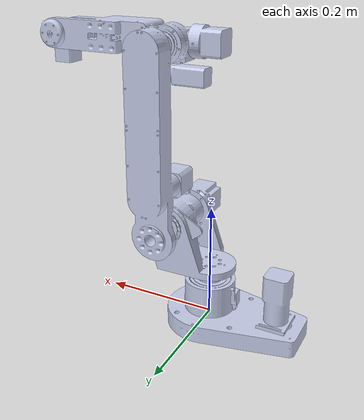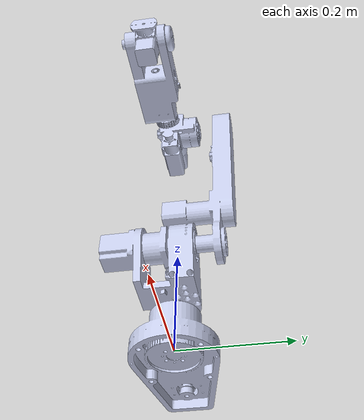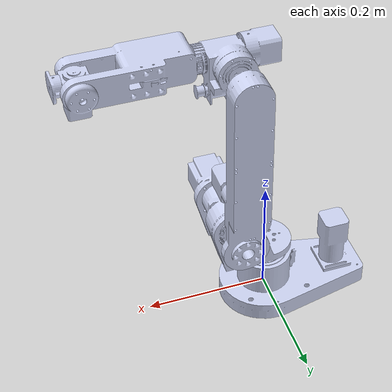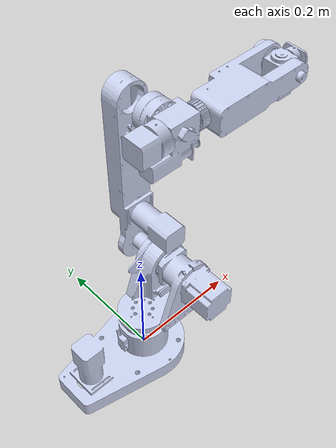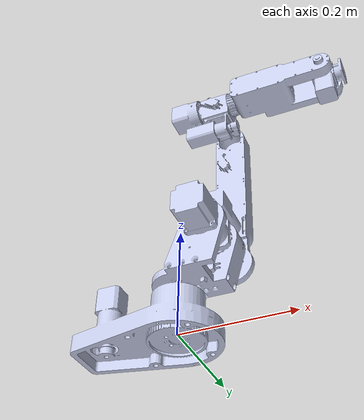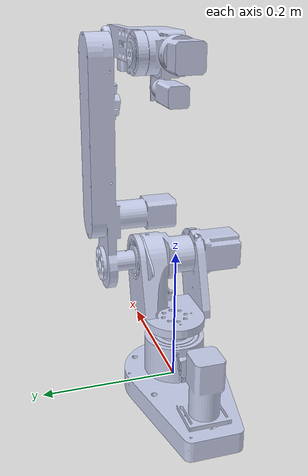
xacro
<?xml version="1.0"?>
<robot name="my_robot" xmlns:xacro="http://www.ros.org/wiki/xacro">

  <material name="grey">
    <color rgba="0.79216 0.81961 0.93333 1" />
  </material>

  <link name="base_link">
    <inertial>
      <origin xyz="-0.041771 -1.1102E-16 0.033857" rpy="0 0 0" />
      <mass value="1.407" />
      <inertia ixx="0.0024719" ixy="-1.3675E-18" ixz="0.00018646"
               iyy="0.00681"   iyz="1.095E-19"
               izz="0.0070135" />
    </inertial>
    <visual>
      <origin xyz="0 0 0" rpy="0 0 0" />
      <geometry>
        <mesh filename="package://my_robot_description/meshes/visual/base_link.STL" />
      </geometry>
      <material name="grey" />
    </visual>
    <collision>
      <origin xyz="0 0 0" rpy="0 0 0" />
      <geometry>
        <mesh filename="package://my_robot_description/meshes/collision/base_link.STL" />
      </geometry>
    </collision>
  </link>

  <link name="1st_Link">
    <inertial>
      <origin xyz="0.0543 -0.020673 0.046417" rpy="0 0 0" />
      <mass value="1.1495" />
      <inertia ixx="0.0032387" ixy="0.00017789" ixz="-0.00039788"
               iyy="0.0020161" iyz="0.00039611"
               izz="0.0027855" />
    </inertial>
    <visual>
      <origin xyz="0 0 0" rpy="0 0 0" />
      <geometry>
        <mesh filename="package://my_robot_description/meshes/visual/1st_Link.STL" />
      </geometry>
      <material name="grey" />
    </visual>
    <collision>
      <origin xyz="0 0 0" rpy="0 0 0" />
      <geometry>
        <mesh filename="package://my_robot_description/meshes/collision/1st_Link.STL" />
      </geometry>
    </collision>
  </link>

  <joint name="Joint_0" type="revolute">
    <origin xyz="0 0 0.0994" rpy="0 0 0" />
    <parent link="base_link" />
    <child link="1st_Link" />
    <axis xyz="0 0 -1" />
    <limit lower="-2.9671" upper="2.9671" effort="4" velocity="3.1" />
  </joint>

  <link name="2nd_Link">
    <inertial>
      <origin xyz="-1.5543E-15 -0.14784 -0.014918" rpy="0 0 0" />
      <mass value="0.8363" />
      <inertia ixx="0.008149"   ixy="9.6713E-18" ixz="-1.613E-18"
               iyy="0.00093169" iyz="0.00089805"
               izz="0.0076645" />
    </inertial>
    <visual>
      <origin xyz="0 0 0" rpy="0 0 0" />
      <geometry>
        <mesh filename="package://my_robot_description/meshes/visual/2nd_Link.STL" />
      </geometry>
      <material name="grey" />
    </visual>
    <collision>
      <origin xyz="0 0 0" rpy="0 0 0" />
      <geometry>
        <mesh filename="package://my_robot_description/meshes/collision/2nd_Link.STL" />
      </geometry>
    </collision>
  </link>

  <joint name="Joint_1" type="revolute">
    <origin xyz="0.064201 0.064413 0.069869" rpy="-1.5708 0 0" />
    <parent link="1st_Link" />
    <child link="2nd_Link" />
    <axis xyz="0 0 -1" />
    <limit lower="-0.733" upper="1.5708" effort="57" velocity="0.63" />
  </joint>

  <link name="3rd_Link">
    <inertial>
      <origin xyz="0.0020169 0.017836 -0.07504" rpy="0 0 0" />
      <mass value="0.27635" />
      <inertia ixx="0.00030182" ixy="3.1988E-05" ixz="-5.1391E-06"
               iyy="0.00023538" iyz="6.3261E-05"
               izz="0.00031122" />
    </inertial>
    <visual>
      <origin xyz="0 0 0" rpy="0 0 0" />
      <geometry>
        <mesh filename="package://my_robot_description/meshes/visual/3rd_Link.STL" />
      </geometry>
      <material name="grey" />
    </visual>
    <collision>
      <origin xyz="0 0 0" rpy="0 0 0" />
      <geometry>
        <mesh filename="package://my_robot_description/meshes/collision/3rd_Link.STL" />
      </geometry>
    </collision>
  </link>

  <joint name="Joint_2" type="revolute">
    <origin xyz="0 -0.305 0.016225" rpy="0 0 0" />
    <parent link="2nd_Link" />
    <child link="3rd_Link" />
    <axis xyz="0 0 1" />
    <limit lower="-1.5533" upper="0.9076" effort="20" velocity="0.63" />
  </joint>

  <link name="4th_Link">
    <inertial>
      <origin xyz="1.2523E-13 0.0044165 0.16589" rpy="0 0 0" />
      <mass value="0.58728" />
      <inertia ixx="0.0038961" ixy="6.9388E-13" ixz="-3.8354E-15"
               iyy="0.0037675" iyz="-5.2921E-05"
               izz="0.00034965" />
    </inertial>
    <visual>
      <origin xyz="0 0 0" rpy="0 0 0" />
      <geometry>
        <mesh filename="package://my_robot_description/meshes/visual/4th_Link.STL" />
      </geometry>
      <material name="grey" />
    </visual>
    <collision>
      <origin xyz="0 0 0" rpy="0 0 0" />
      <geometry>
        <mesh filename="package://my_robot_description/meshes/collision/4th_Link.STL" />
      </geometry>
    </collision>
  </link>

  <joint name="Joint_3" type="revolute">
    <origin xyz="-0.078271 0 -0.090625" rpy="-1.5708 0 -1.5708" />
    <parent link="3rd_Link" />
    <child link="4th_Link" />
    <axis xyz="0 0 -1" />
    <limit lower="-2.8798" upper="2.8798" effort="1.6" velocity="2" />
  </joint>

  <link name="5th_Link">
    <inertial>
      <origin xyz="4.8184E-14 -0.01065 -0.040384" rpy="0 0 0" />
      <mass value="0.13801" />
      <inertia ixx="0.00010569" ixy="-5.0825E-17" ixz="1.6311E-16"
               iyy="7.3011E-05" iyz="-7.9323E-06"
               izz="6.2637E-05" />
    </inertial>
    <visual>
      <origin xyz="0 0 0" rpy="0 0 0" />
      <geometry>
        <mesh filename="package://my_robot_description/meshes/visual/5th_Link.STL" />
      </geometry>
      <material name="grey" />
    </visual>
    <collision>
      <origin xyz="0 0 0" rpy="0 0 0" />
      <geometry>
        <mesh filename="package://my_robot_description/meshes/collision/5th_Link.STL" />
      </geometry>
    </collision>
  </link>

  <joint name="Joint_4" type="revolute">
    <origin xyz="0 -0.044813 0.29996" rpy="1.5708 0 0" />
    <parent link="4th_Link" />
    <child link="5th_Link" />
    <axis xyz="0 0 -1" />
    <limit lower="-1.8326" upper="1.8326" effort="81" velocity="0.16" />
  </joint>

  <link name="6th_Link">
    <inertial>
      <origin xyz="-2.2204E-16 0 -0.0070452" rpy="0 0 0" />
      <mass value="0.015303" />
      <inertia ixx="1.9052E-06" ixy="-1.4035E-19" ixz="-1.8528E-20"
               iyy="1.4167E-06" iyz="9.3992E-21"
               izz="2.619E-06" />
    </inertial>
    <visual>
      <origin xyz="0 0 0" rpy="0 0 0" />
      <geometry>
        <mesh filename="package://my_robot_description/meshes/visual/6th_Link.STL" />
      </geometry>
      <material name="grey" />
    </visual>
    <collision>
      <origin xyz="0 0 0" rpy="0 0 0" />
      <geometry>
        <mesh filename="package://my_robot_description/meshes/collision/6th_Link.STL" />
      </geometry>
    </collision>
  </link>

  <joint name="Joint_5" type="revolute">
    <origin xyz="0 0.03625 -0.045781" rpy="1.5708 0 3.1416" />
    <parent link="5th_Link" />
    <child link="6th_Link" />
    <axis xyz="0 0 1" />
    <limit lower="-2.7053" upper="2.7053" effort="2.4" velocity="1.65" />
  </joint>

</robot>
